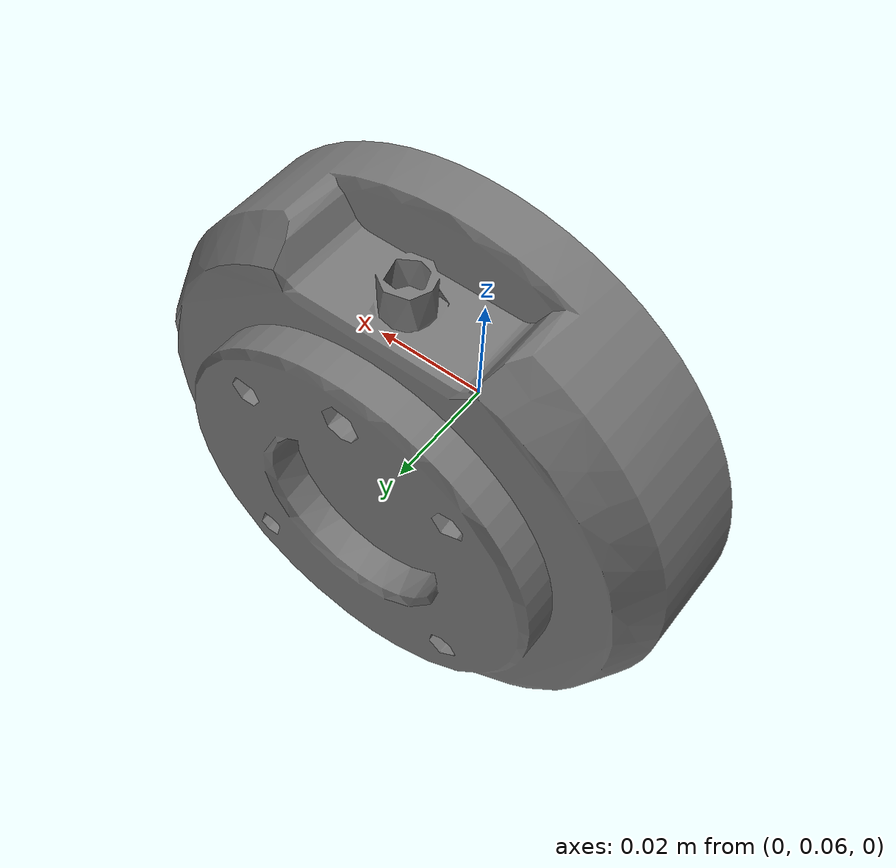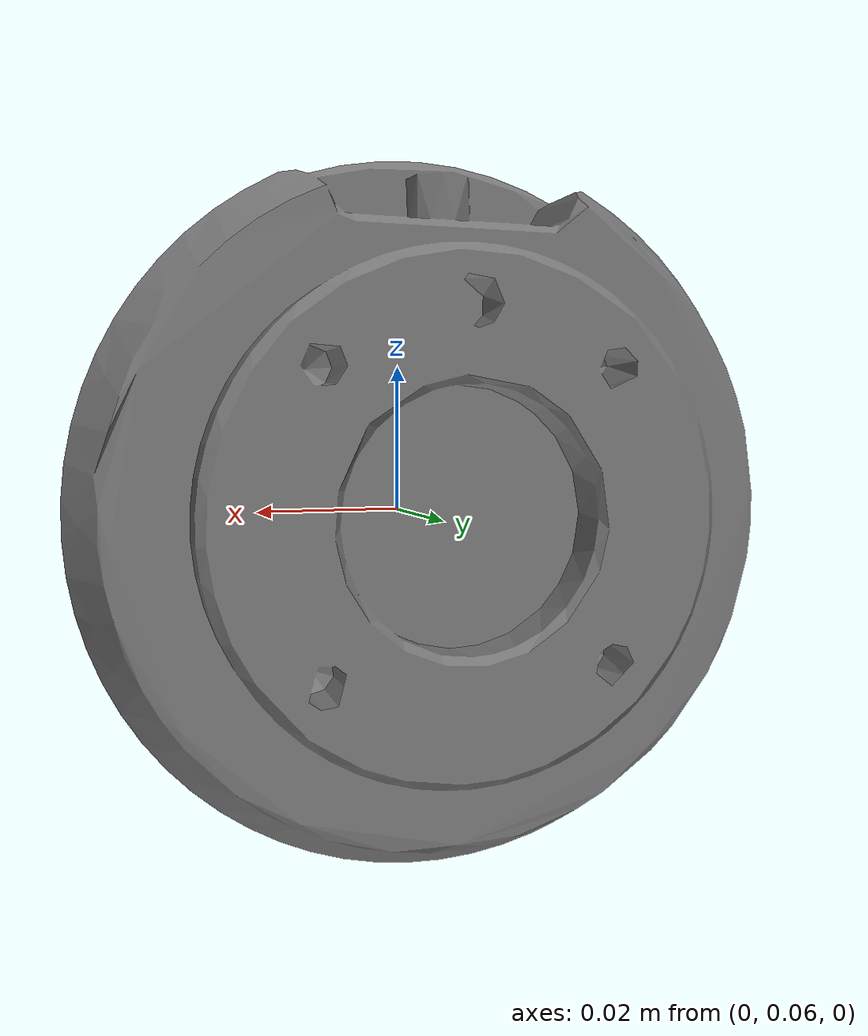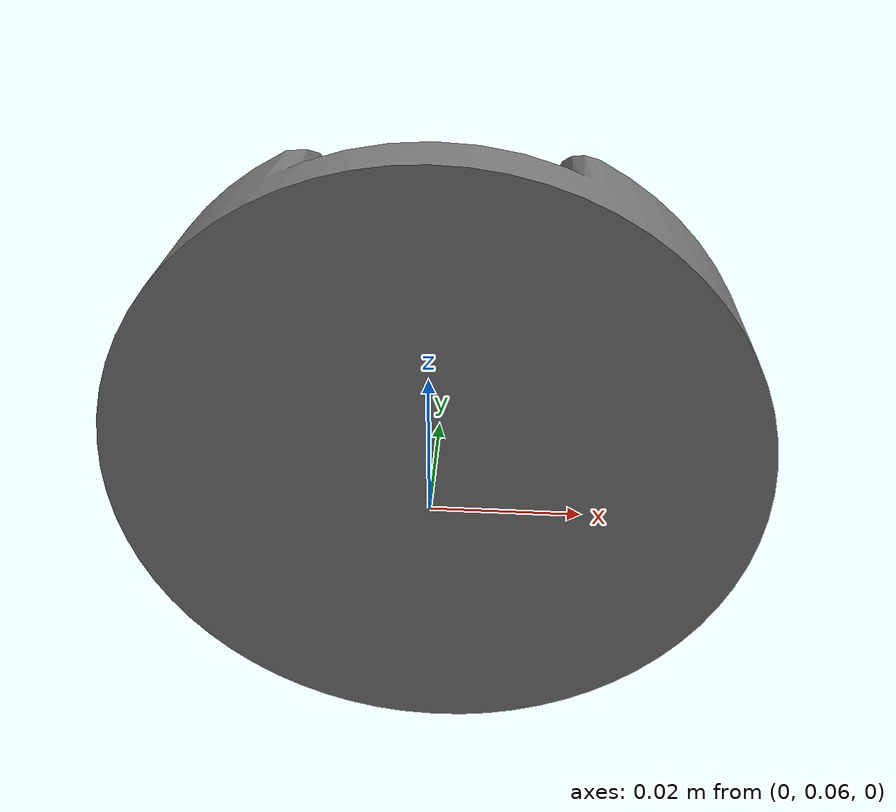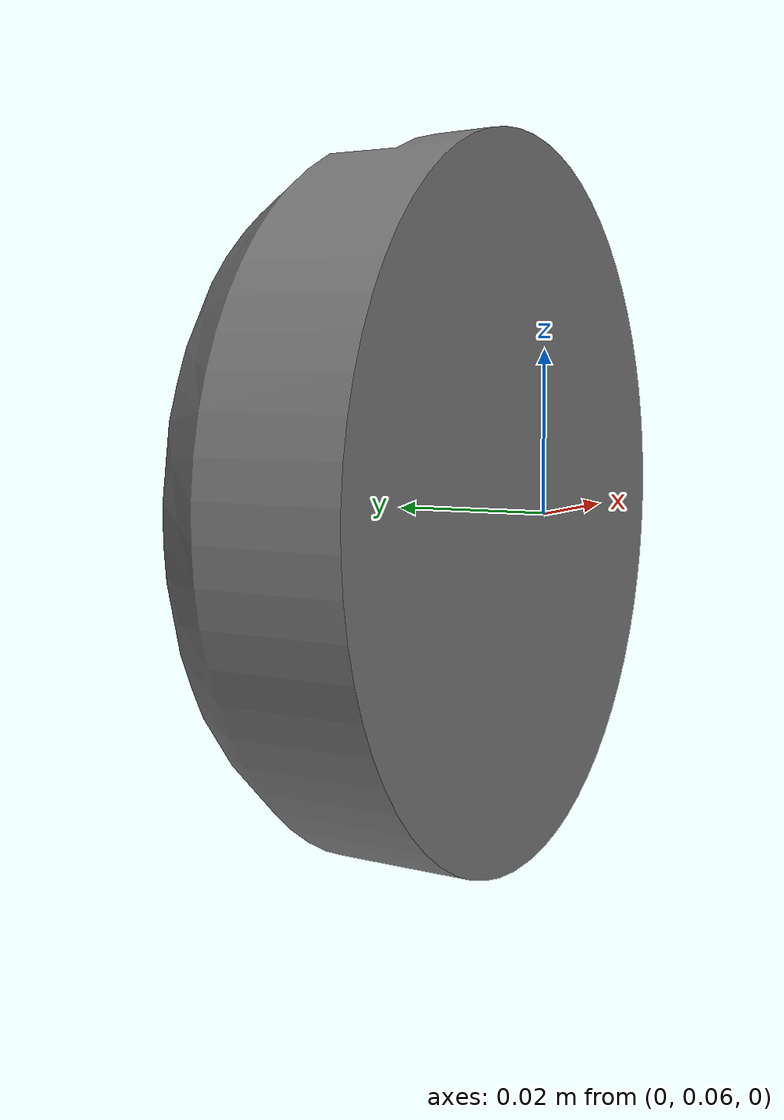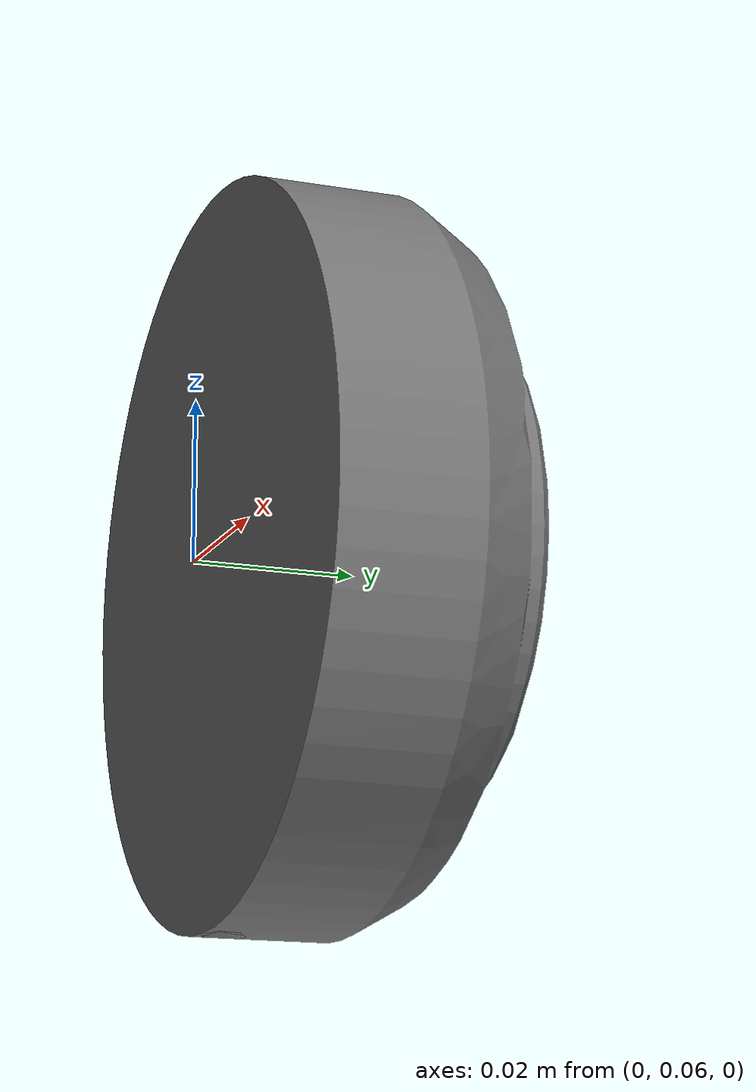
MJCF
<mujoco model="wrist3">
  <default>
    <default class="visual">
      <geom group="2" type="mesh" contype="0" conaffinity="0"/>
    </default>
    <default class="collision">
      <geom group="3" type="mesh"/>
    </default>
  </default>
  <asset>
    <material name="SWMaterial-2_003" specular="0.5" shininess="0.25" rgba="0.464314 0.464314 0.464314 1.000000"/>
    <mesh file="wrist3.obj"/>
  </asset>
  <worldbody>
    <body name="wrist3">
      <geom material="SWMaterial-2_003" mesh="wrist3" class="visual"/>
      <geom mesh="wrist3" class="collision"/>
    </body>
  </worldbody>
</mujoco>
